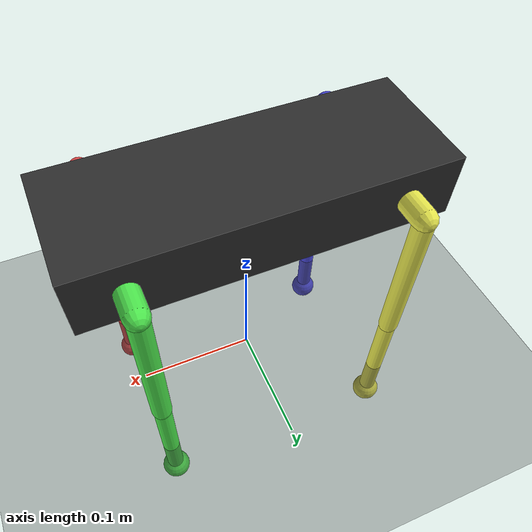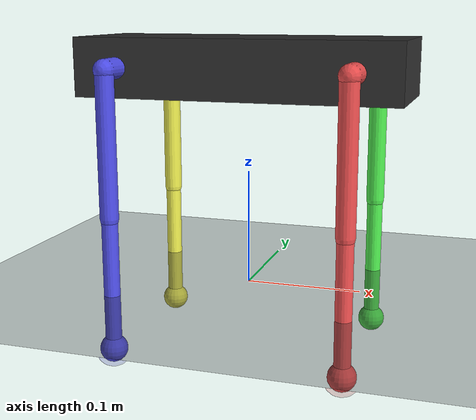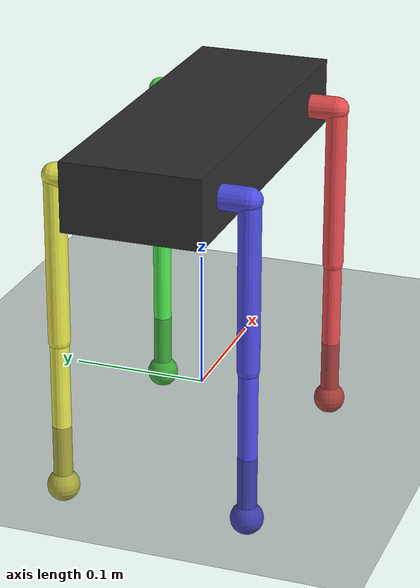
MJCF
<mujoco model="easy_quadruped_floating">
  <compiler angle="radian" autolimits="true"/>
  <option timestep="0.001000" integrator="RK4" gravity="0 0 -9.81" iterations="50" ls_iterations="20"/>
  <visual>
    <headlight ambient="0.35 0.35 0.35" diffuse="0.75 0.75 0.75" specular="0.20 0.20 0.20"/>
    <map znear="0.01"/>
  </visual>
  <asset>
    <texture name="grid" type="2d" builtin="checker" rgb1="0.20 0.20 0.20" rgb2="0.10 0.10 0.10" width="512" height="512"/>
    <material name="grid" texture="grid" texrepeat="4 4" reflectance="0.15"/>
  </asset>
  <worldbody>
    <light name="sun" pos="0 0 2.0" dir="0 0 -1" directional="true"/>
    <geom name="floor" type="plane" size="4 4 0.1" material="grid" friction="1.500 0.05 0.01" solref="0.01 1" solimp="0.9 0.95 0.001"/>
    <camera name="overview" pos="1.00 -1.40 0.70" xyaxes="1.0 0.0 0.0 0.0 0.55 0.84"/>
    <body name="torso" pos="0 0 0.19">
      <freejoint name="root"/>
      <geom name="torso_geom" type="box" size="0.138000 0.050000 0.025000" mass="0.880000" contype="0" conaffinity="0" rgba="0.18 0.18 0.18 1"/>
      <site name="torso_center" pos="0 0 0" size="0.01" rgba="1 1 1 1"/>
      <site name="imu_site" pos="0 0 0" size="0.006" rgba="0.2 0.8 1 0.8"/>

    <body name="fr_abad_body" pos="0.100000 -0.040000 0.000000">
      <joint name="fr_abad" type="hinge" axis="1 0 0" range="-1.4 1.4" damping="1.049000" armature="0.019360"/>
      <geom name="fr_abad_link" type="capsule" fromto="0 0 0 0 -0.030000 0" size="0.009" mass="0.002475" contype="0" conaffinity="0" rgba="0.90 0.30 0.30 1"/>
      <body name="fr_hip_body" pos="0 -0.030000 0">
        <joint name="fr_hip" type="hinge" axis="0 1 0" range="-2.5 2.5" damping="1.049000" armature="0.019360"/>
        <geom name="fr_upper_link" type="capsule" fromto="0 0 0 0 0 -0.123500" size="0.008" mass="0.009900" contype="0" conaffinity="0" rgba="0.90 0.30 0.30 1"/>
        <body name="fr_knee_body" pos="0 0 -0.123500">
          <joint name="fr_knee" type="hinge" axis="0 1 0" range="-2.8 0.4" damping="1.049000" armature="0.019360"/>
          <geom name="fr_lower_link" type="capsule" fromto="0 0 0 0 0 -0.115000" size="0.007" mass="0.015600" contype="0" conaffinity="0" rgba="0.90 0.30 0.30 1"/>
          <geom name="fr_foot_geom" type="sphere" pos="0 0 -0.115000" size="0.010000" mass="0.004500" friction="1.500 0.02 0.01" solref="0.01 1" solimp="0.9 0.95 0.001" rgba="0.90 0.30 0.30 1"/>
          <site name="fr_foot" pos="0 0 -0.115000" size="0.012" rgba="0.90 0.30 0.30 1"/>
          <site name="fr_contact" pos="0 0 -0.115000" size="0.016" rgba="0.90 0.30 0.30 0.25"/>
        </body>
      </body>
    </body>

    <body name="fl_abad_body" pos="0.100000 0.040000 0.000000">
      <joint name="fl_abad" type="hinge" axis="1 0 0" range="-1.4 1.4" damping="1.049000" armature="0.019360"/>
      <geom name="fl_abad_link" type="capsule" fromto="0 0 0 0 0.030000 0" size="0.009" mass="0.002475" contype="0" conaffinity="0" rgba="0.30 0.90 0.30 1"/>
      <body name="fl_hip_body" pos="0 0.030000 0">
        <joint name="fl_hip" type="hinge" axis="0 1 0" range="-2.5 2.5" damping="1.049000" armature="0.019360"/>
        <geom name="fl_upper_link" type="capsule" fromto="0 0 0 0 0 -0.123500" size="0.008" mass="0.009900" contype="0" conaffinity="0" rgba="0.30 0.90 0.30 1"/>
        <body name="fl_knee_body" pos="0 0 -0.123500">
          <joint name="fl_knee" type="hinge" axis="0 1 0" range="-2.8 0.4" damping="1.049000" armature="0.019360"/>
          <geom name="fl_lower_link" type="capsule" fromto="0 0 0 0 0 -0.115000" size="0.007" mass="0.015600" contype="0" conaffinity="0" rgba="0.30 0.90 0.30 1"/>
          <geom name="fl_foot_geom" type="sphere" pos="0 0 -0.115000" size="0.010000" mass="0.004500" friction="1.500 0.02 0.01" solref="0.01 1" solimp="0.9 0.95 0.001" rgba="0.30 0.90 0.30 1"/>
          <site name="fl_foot" pos="0 0 -0.115000" size="0.012" rgba="0.30 0.90 0.30 1"/>
          <site name="fl_contact" pos="0 0 -0.115000" size="0.016" rgba="0.30 0.90 0.30 0.25"/>
        </body>
      </body>
    </body>

    <body name="br_abad_body" pos="-0.100000 -0.040000 0.000000">
      <joint name="br_abad" type="hinge" axis="1 0 0" range="-1.4 1.4" damping="1.049000" armature="0.019360"/>
      <geom name="br_abad_link" type="capsule" fromto="0 0 0 0 -0.030000 0" size="0.009" mass="0.002475" contype="0" conaffinity="0" rgba="0.30 0.30 0.90 1"/>
      <body name="br_hip_body" pos="0 -0.030000 0">
        <joint name="br_hip" type="hinge" axis="0 1 0" range="-2.5 2.5" damping="1.049000" armature="0.019360"/>
        <geom name="br_upper_link" type="capsule" fromto="0 0 0 0 0 -0.123500" size="0.008" mass="0.009900" contype="0" conaffinity="0" rgba="0.30 0.30 0.90 1"/>
        <body name="br_knee_body" pos="0 0 -0.123500">
          <joint name="br_knee" type="hinge" axis="0 1 0" range="-2.8 0.4" damping="1.049000" armature="0.019360"/>
          <geom name="br_lower_link" type="capsule" fromto="0 0 0 0 0 -0.115000" size="0.007" mass="0.015600" contype="0" conaffinity="0" rgba="0.30 0.30 0.90 1"/>
          <geom name="br_foot_geom" type="sphere" pos="0 0 -0.115000" size="0.010000" mass="0.004500" friction="1.500 0.02 0.01" solref="0.01 1" solimp="0.9 0.95 0.001" rgba="0.30 0.30 0.90 1"/>
          <site name="br_foot" pos="0 0 -0.115000" size="0.012" rgba="0.30 0.30 0.90 1"/>
          <site name="br_contact" pos="0 0 -0.115000" size="0.016" rgba="0.30 0.30 0.90 0.25"/>
        </body>
      </body>
    </body>

    <body name="bl_abad_body" pos="-0.100000 0.040000 0.000000">
      <joint name="bl_abad" type="hinge" axis="1 0 0" range="-1.4 1.4" damping="1.049000" armature="0.019360"/>
      <geom name="bl_abad_link" type="capsule" fromto="0 0 0 0 0.030000 0" size="0.009" mass="0.002475" contype="0" conaffinity="0" rgba="0.90 0.90 0.30 1"/>
      <body name="bl_hip_body" pos="0 0.030000 0">
        <joint name="bl_hip" type="hinge" axis="0 1 0" range="-2.5 2.5" damping="1.049000" armature="0.019360"/>
        <geom name="bl_upper_link" type="capsule" fromto="0 0 0 0 0 -0.123500" size="0.008" mass="0.009900" contype="0" conaffinity="0" rgba="0.90 0.90 0.30 1"/>
        <body name="bl_knee_body" pos="0 0 -0.123500">
          <joint name="bl_knee" type="hinge" axis="0 1 0" range="-2.8 0.4" damping="1.049000" armature="0.019360"/>
          <geom name="bl_lower_link" type="capsule" fromto="0 0 0 0 0 -0.115000" size="0.007" mass="0.015600" contype="0" conaffinity="0" rgba="0.90 0.90 0.30 1"/>
          <geom name="bl_foot_geom" type="sphere" pos="0 0 -0.115000" size="0.010000" mass="0.004500" friction="1.500 0.02 0.01" solref="0.01 1" solimp="0.9 0.95 0.001" rgba="0.90 0.90 0.30 1"/>
          <site name="bl_foot" pos="0 0 -0.115000" size="0.012" rgba="0.90 0.90 0.30 1"/>
          <site name="bl_contact" pos="0 0 -0.115000" size="0.016" rgba="0.90 0.90 0.30 0.25"/>
        </body>
      </body>
    </body>

    </body>
  </worldbody>
  <actuator>
    <motor name="fr_abad_motor" joint="fr_abad" gear="1" ctrllimited="true" ctrlrange="-3.000 3.000"/>
    <motor name="fr_hip_motor" joint="fr_hip" gear="1" ctrllimited="true" ctrlrange="-3.000 3.000"/>
    <motor name="fr_knee_motor" joint="fr_knee" gear="1" ctrllimited="true" ctrlrange="-3.000 3.000"/>
    <motor name="fl_abad_motor" joint="fl_abad" gear="1" ctrllimited="true" ctrlrange="-3.000 3.000"/>
    <motor name="fl_hip_motor" joint="fl_hip" gear="1" ctrllimited="true" ctrlrange="-3.000 3.000"/>
    <motor name="fl_knee_motor" joint="fl_knee" gear="1" ctrllimited="true" ctrlrange="-3.000 3.000"/>
    <motor name="br_abad_motor" joint="br_abad" gear="1" ctrllimited="true" ctrlrange="-3.000 3.000"/>
    <motor name="br_hip_motor" joint="br_hip" gear="1" ctrllimited="true" ctrlrange="-3.000 3.000"/>
    <motor name="br_knee_motor" joint="br_knee" gear="1" ctrllimited="true" ctrlrange="-3.000 3.000"/>
    <motor name="bl_abad_motor" joint="bl_abad" gear="1" ctrllimited="true" ctrlrange="-3.000 3.000"/>
    <motor name="bl_hip_motor" joint="bl_hip" gear="1" ctrllimited="true" ctrlrange="-3.000 3.000"/>
    <motor name="bl_knee_motor" joint="bl_knee" gear="1" ctrllimited="true" ctrlrange="-3.000 3.000"/>
  </actuator>
  <sensor>
    <framepos name="torso_pos" objtype="site" objname="torso_center"/>
    <framequat name="imu_quat" objtype="site" objname="imu_site"/>
    <gyro name="imu_gyro" site="imu_site"/>
    <accelerometer name="imu_acc" site="imu_site"/>
    <velocimeter name="imu_vel" site="imu_site"/>
    <framepos name="fr_foot_pos" objtype="site" objname="fr_foot"/>
    <touch name="fr_touch" site="fr_contact"/>
    <framepos name="fl_foot_pos" objtype="site" objname="fl_foot"/>
    <touch name="fl_touch" site="fl_contact"/>
    <framepos name="br_foot_pos" objtype="site" objname="br_foot"/>
    <touch name="br_touch" site="br_contact"/>
    <framepos name="bl_foot_pos" objtype="site" objname="bl_foot"/>
    <touch name="bl_touch" site="bl_contact"/>
    <jointpos name="fr_abad_pos" joint="fr_abad"/>
    <jointvel name="fr_abad_vel" joint="fr_abad"/>
    <jointpos name="fr_hip_pos" joint="fr_hip"/>
    <jointvel name="fr_hip_vel" joint="fr_hip"/>
    <jointpos name="fr_knee_pos" joint="fr_knee"/>
    <jointvel name="fr_knee_vel" joint="fr_knee"/>
    <jointpos name="fl_abad_pos" joint="fl_abad"/>
    <jointvel name="fl_abad_vel" joint="fl_abad"/>
    <jointpos name="fl_hip_pos" joint="fl_hip"/>
    <jointvel name="fl_hip_vel" joint="fl_hip"/>
    <jointpos name="fl_knee_pos" joint="fl_knee"/>
    <jointvel name="fl_knee_vel" joint="fl_knee"/>
    <jointpos name="br_abad_pos" joint="br_abad"/>
    <jointvel name="br_abad_vel" joint="br_abad"/>
    <jointpos name="br_hip_pos" joint="br_hip"/>
    <jointvel name="br_hip_vel" joint="br_hip"/>
    <jointpos name="br_knee_pos" joint="br_knee"/>
    <jointvel name="br_knee_vel" joint="br_knee"/>
    <jointpos name="bl_abad_pos" joint="bl_abad"/>
    <jointvel name="bl_abad_vel" joint="bl_abad"/>
    <jointpos name="bl_hip_pos" joint="bl_hip"/>
    <jointvel name="bl_hip_vel" joint="bl_hip"/>
    <jointpos name="bl_knee_pos" joint="bl_knee"/>
    <jointvel name="bl_knee_vel" joint="bl_knee"/>
  </sensor>
</mujoco>
